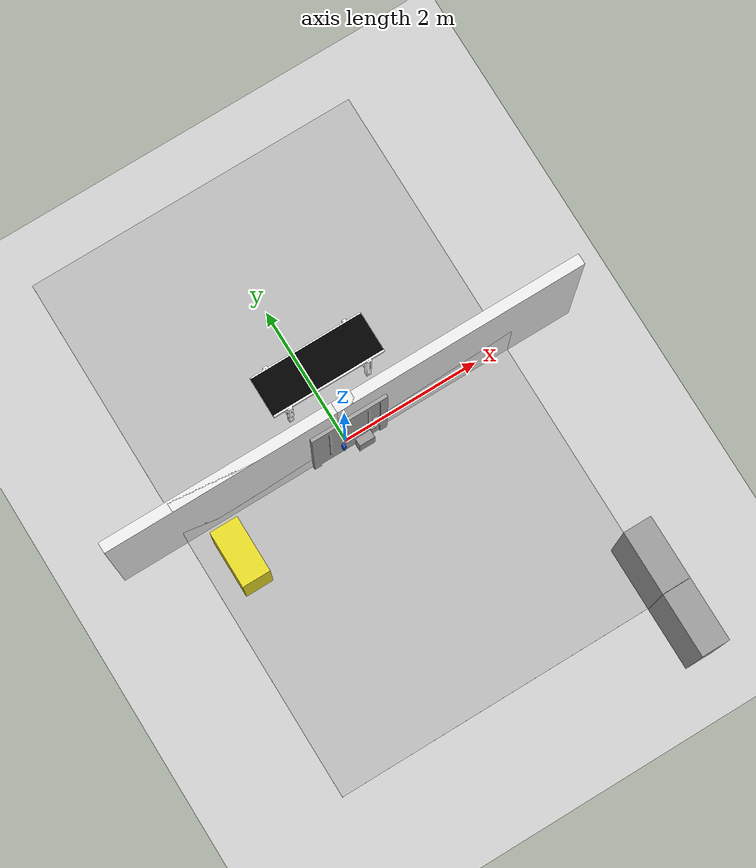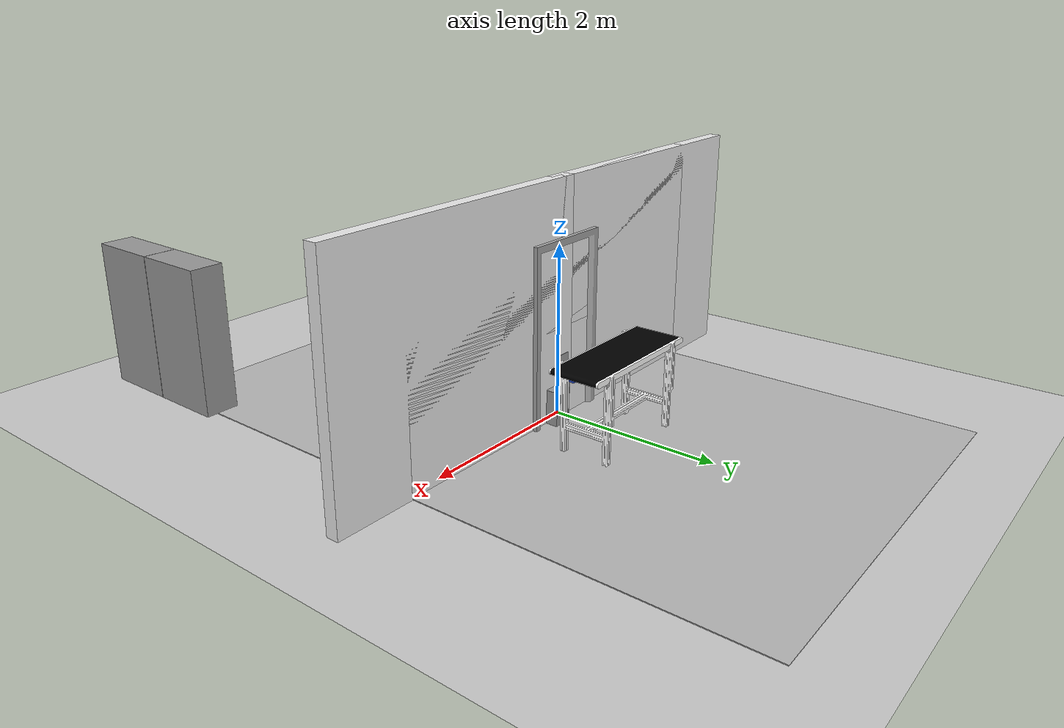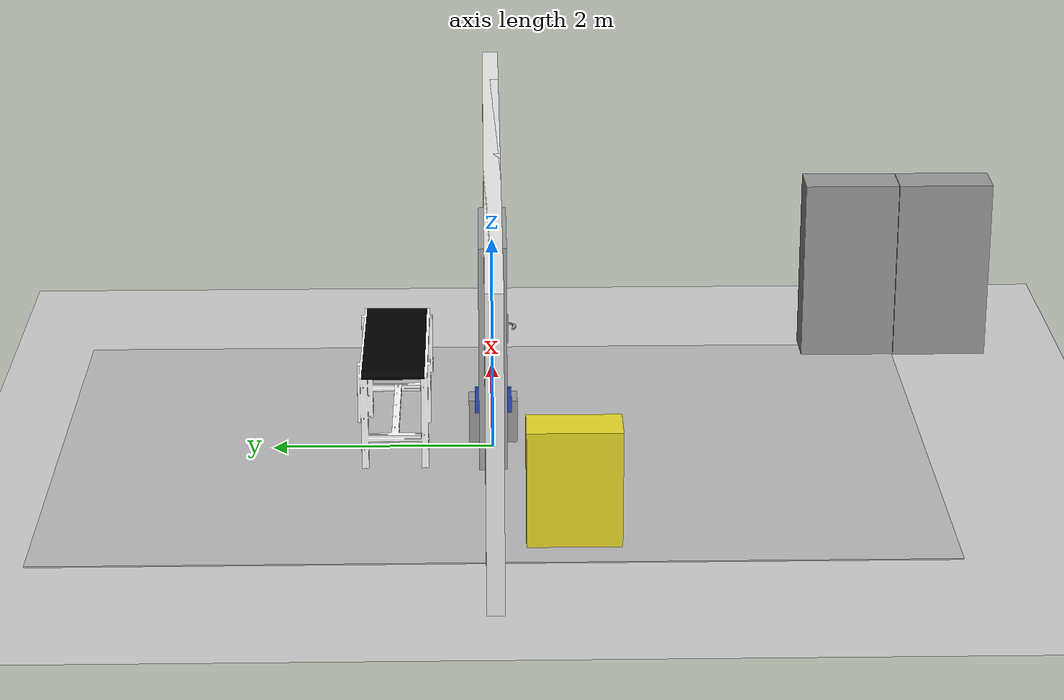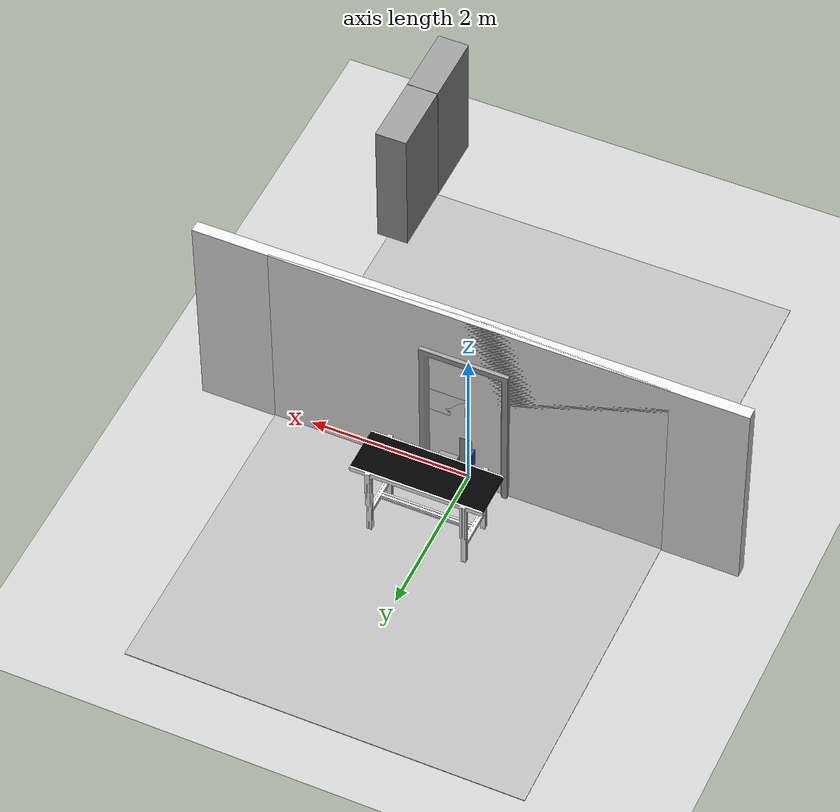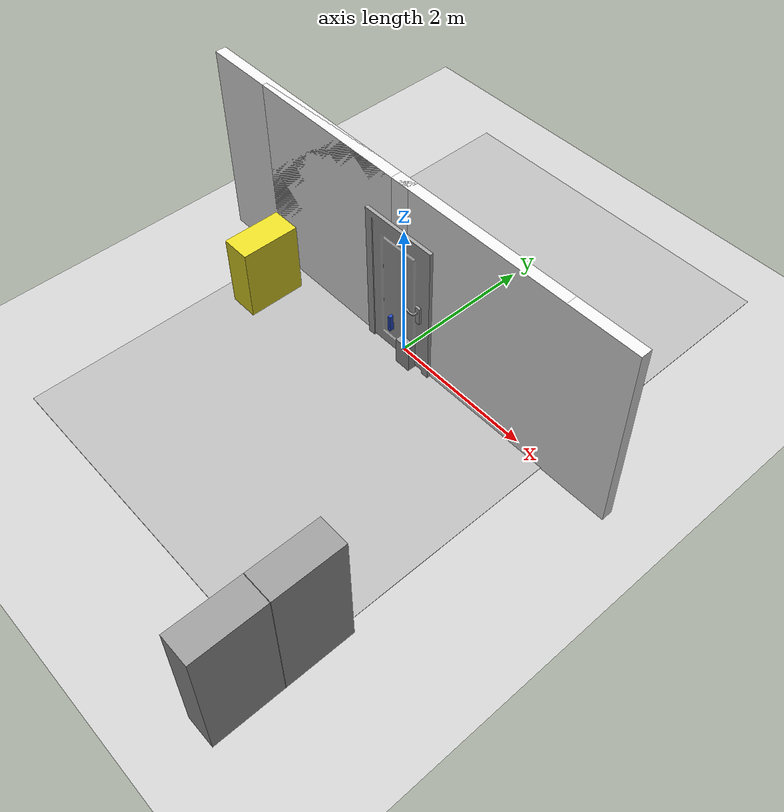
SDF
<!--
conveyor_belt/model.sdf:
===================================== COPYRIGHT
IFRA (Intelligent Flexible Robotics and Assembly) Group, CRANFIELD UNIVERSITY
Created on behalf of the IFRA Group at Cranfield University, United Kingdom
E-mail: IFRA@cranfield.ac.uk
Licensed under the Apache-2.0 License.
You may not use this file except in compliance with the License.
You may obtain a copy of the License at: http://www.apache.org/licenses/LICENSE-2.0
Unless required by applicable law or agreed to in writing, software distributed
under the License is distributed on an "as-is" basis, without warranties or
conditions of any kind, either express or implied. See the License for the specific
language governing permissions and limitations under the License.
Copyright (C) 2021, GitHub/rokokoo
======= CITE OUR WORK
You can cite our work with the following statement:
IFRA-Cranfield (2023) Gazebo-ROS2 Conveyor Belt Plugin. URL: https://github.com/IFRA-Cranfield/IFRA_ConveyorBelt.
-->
<sdf version="1.6">
 <world name="default">
  <light name="sun" type="directional">
   <pose>0 0 10 0 -0 0</pose>
   <diffuse>0.8 0.8 0.8 1</diffuse>
   <specular>0.1 0.1 0.1 1</specular>
   <attenuation>
    <range>1000</range>
    <constant>0.9</constant>
    <linear>0.01</linear>
    <quadratic>0.001</quadratic>
   </attenuation>
   <direction>-0.5 0.5 -1</direction>
  </light>
  <model name="ground_plane">
   <static>1</static>
   <link name="link">
    <collision name="collision">
     <geometry><plane><normal>0 0 1</normal><size>100 100</size></plane></geometry>
     <surface><friction><ode><mu>100</mu><mu2>50</mu2></ode></friction></surface>
    </collision>
    <visual name="visual">
     <cast_shadows>0</cast_shadows>
     <geometry><plane><normal>0 0 1</normal><size>100 100</size></plane></geometry>
     <material>
      <script><uri>file://media/materials/scripts/gazebo.material</uri><name>Gazebo/Grey</name></script>
     </material>
    </visual>
   </link>
  </model>
  <gravity>0 0 -9.8</gravity>
  <magnetic_field>6e-06 2.3e-05 -4.2e-05</magnetic_field>
  <atmosphere type="adiabatic"/>
  <physics name="default_physics" default="0" type="ode">
   <max_step_size>0.001</max_step_size>
   <real_time_factor>1</real_time_factor>
   <real_time_update_rate>1000</real_time_update_rate>
  </physics>
  <scene><ambient>0.4 0.4 0.4 1</ambient><background>0.7 0.7 0.7 1</background><shadows>1</shadows></scene>
  <spherical_coordinates>
   <surface_model>EARTH_WGS84</surface_model>
   <latitude_deg>0</latitude_deg>
   <longitude_deg>0</longitude_deg>
   <elevation>0</elevation>
   <heading_deg>0</heading_deg>
  </spherical_coordinates>
  <include>
   <name>conveyor_belt</name>
   <pose>0.125 0.88 0 0 0 1.5708</pose>
   <uri>model://conveyor_belt</uri>
  </include>
  <model name="office_small_1">
   <model name="Floor">
    <link name="main">
     <collision name="main_Collision"><geometry><box><size>4.9 7.865 0.01</size></box></geometry></collision>
     <visual name="main_Visual">
      <geometry><box><size>4.9 7.865 0.01</size></box></geometry>
      <material>
       <script>
        <uri>model://office_small/materials/scripts</uri>
        <uri>model://office_small/materials/textures</uri>
        <name>floor</name>
       </script>
      </material>
     </visual>
    </link>
    <static>1</static>
   </model>
   <model name="office_small">
    <link name="Wall_2">
     <visual name="Wall_2_Visual_0">
      <pose>0 0 1.25 0 -0 0</pose>
      <geometry><box><size>4.9 0.15 3.02</size></box></geometry>
      <material>
       <script>
        <uri>model://office_small/materials/scripts</uri>
        <uri>model://office_small/materials/textures</uri>
        <name>wall_white</name>
       </script>
      </material>
     </visual>
     <collision name="Wall_2_Collision_0">
      <geometry><box><size>4.9 0.15 3.02</size></box></geometry>
      <pose>0 0 1.25 0 -0 0</pose>
     </collision>
    </link>
    <link name="Wall_3">
     <visual name="Wall_3_Visual_0">
      <pose>0 0 1.25 0 -0 0</pose>
      <geometry><box><size>4.9 0.15 3.02</size></box></geometry>
      <material>
       <script>
        <uri>model://office_small/materials/scripts</uri>
        <uri>model://office_small/materials/textures</uri>
        <name>wall_white</name>
       </script>
      </material>
     </visual>
     <collision name="Wall_3_Collision_0">
      <geometry><box><size>4.9 0.15 3.02</size></box></geometry>
      <pose>0 0 1.25 0 -0 0</pose>
     </collision>
    </link>
    <link name="Wall_5">
     <visual name="Wall_5_Visual_0">
      <pose>0 0 1.25 0 -0 0</pose>
      <geometry><box><size>0.27 0.15 3.02</size></box></geometry>
      <material>
       <script>
        <uri>model://office_small/materials/scripts</uri>
        <uri>model://office_small/materials/textures</uri>
        <name>wall_white</name>
       </script>
      </material>
     </visual>
     <collision name="Wall_5_Collision_0">
      <geometry><box><size>0.12 0.15 3.02</size></box></geometry>
      <pose>0 0 1.25 0 -0 0</pose>
     </collision>
    </link>
    <link name="Wall_6">
     <visual name="Wall_6_Visual_0">
      <pose>0 0 1.25 0 -0 0</pose>
      <geometry><box><size>6.8 0.15 3.02</size></box></geometry>
      <material>
       <script>
        <uri>model://office_small/materials/scripts</uri>
        <uri>model://office_small/materials/textures</uri>
        <name>wall_white</name>
       </script>
      </material>
     </visual>
     <collision name="Wall_6_Collision_0">
      <geometry><box><size>6.8 0.15 3.02</size></box></geometry>
      <pose>0 0 1.25 0 -0 0</pose>
     </collision>
    </link>
    <link name="Wall_7">
     <visual name="Wall_7_Visual_0">
      <pose>0 0 1.25 0 -0 0</pose>
      <geometry><box><size>1.02 0.15 0.35</size></box></geometry>
      <material>
       <script>
        <uri>model://office_small/materials/scripts</uri>
        <uri>model://office_small/materials/textures</uri>
        <name>wall_white</name>
       </script>
      </material>
     </visual>
     <collision name="Wall_7_Collision_0">
      <geometry><box><size>1.02 0.15 0.35</size></box></geometry>
      <pose>0 0 1.25 0 -0 0</pose>
     </collision>
    </link>
    <static>1</static>
   </model>
   <model name="door_3d">
    <link name="link_1">
     <visual name="visual">
      <geometry><mesh><uri>model://door_3d/meshes/door_v2_door.dae</uri><scale>1 1 1</scale></mesh></geometry>
      <material>
       <script>
        <uri>model://door_3d/materials/scripts</uri>
        <uri>model://door_3d/materials/textures</uri>
        <name>door_3d</name>
       </script>
      </material>
     </visual>
     <collision name="collision">
      <geometry><mesh><uri>model://door_3d/meshes/door_v2_door.dae</uri><scale>1 1 1</scale></mesh></geometry>
     </collision>
    </link>
    <link name="link_2">
     <visual name="visual">
      <geometry><mesh><uri>model://door_3d/meshes/door_v2_handle.dae</uri><scale>1 1 1</scale></mesh></geometry>
      <material>
       <script>
        <uri>model://door_3d/materials/scripts</uri>
        <uri>model://door_3d/materials/textures</uri>
        <name>door_handle</name>
       </script>
      </material>
     </visual>
     <collision name="collision">
      <geometry><mesh><uri>model://door_3d/meshes/door_v2_handle.dae</uri><scale>1 1 1</scale></mesh></geometry>
     </collision>
    </link>
    <static>1</static>
   </model>
   <static>0</static>
  </model>
  <model name="table_1">
   <link name="Wall">
    <inertial>
     <mass>5</mass>
     <inertia><ixx>0.1022</ixx><iyy>0.2197</iyy><izz>0.1905</izz><ixy>0</ixy><ixz>0</ixz><iyz>0</iyz></inertia>
    </inertial>
    <collision name="Wall_Collision"><geometry><box><size>0.9 0.4 1.74125</size></box></geometry></collision>
    <visual name="Wall_Visual">
     <geometry><box><size>0.9 0.4 1.74125</size></box></geometry>
     <material>
      <script><uri>file://media/materials/scripts/gazebo.material</uri><name>Gazebo/Grey</name></script>
      <ambient>1 1 1 1</ambient>
     </material>
    </visual>
   </link>
   <static>1</static>
   <pose>2.385 -4.3965 0.870625 0 -0 1.5708</pose>
  </model>
  <model name="table_2">
   <link name="Wall_2">
    <inertial>
     <mass>5</mass>
     <inertia><ixx>0.1022</ixx><iyy>0.2197</iyy><izz>0.1905</izz><ixy>0</ixy><ixz>0</ixz><iyz>0</iyz></inertia>
    </inertial>
    <collision name="Wall_Collision_2"><geometry><box><size>0.9 0.4 1.74125</size></box></geometry></collision>
    <visual name="Wall_Visual_2">
     <geometry><box><size>0.9 0.4 1.74125</size></box></geometry>
     <material>
      <script><uri>file://media/materials/scripts/gazebo.material</uri><name>Gazebo/Grey</name></script>
      <ambient>1 1 1 1</ambient>
     </material>
    </visual>
   </link>
   <static>1</static>
   <pose>2.385 -3.4915 0.870625 0 -0 1.5708</pose>
  </model>
  <model name="table_4">
   <link name="Wall_4">
    <inertial>
     <mass>5</mass>
     <inertia><ixx>0.1022</ixx><iyy>0.2197</iyy><izz>0.1905</izz><ixy>0</ixy><ixz>0</ixz><iyz>0</iyz></inertia>
    </inertial>
    <collision name="Wall_Collision_4"><geometry><box><size>0.813 0.405 1.05</size></box></geometry></collision>
    <visual name="Wall_Visual_4">
     <geometry><box><size>0.813 0.405 1.05</size></box></geometry>
     <material>
      <script><uri>file://media/materials/scripts/gazebo.material</uri><name>Gazebo/Yellow</name></script>
      <ambient>1 1 1 1</ambient>
     </material>
    </visual>
   </link>
   <static>1</static>
   <pose>-1.9625 -0.6745 0.525 0 -0 -1.5708</pose>
  </model>
  <model name="table_5">
   <link name="Wall_5">
    <inertial>
     <mass>5</mass>
     <inertia><ixx>0.1022</ixx><iyy>0.2197</iyy><izz>0.1905</izz><ixy>0</ixy><ixz>0</ixz><iyz>0</iyz></inertia>
    </inertial>
    <collision name="Wall_Collision_5"><geometry><box><size>0.16 0.16 0.75</size></box></geometry></collision>
    <visual name="Wall_Visual_5">
     <geometry><box><size>0.16 0.16 0.75</size></box></geometry>
     <material>
      <script><uri>file://media/materials/scripts/gazebo.material</uri><name>Gazebo/Grey</name></script>
      <ambient>1 1 1 1</ambient>
     </material>
    </visual>
   </link>
   <static>1</static>
   <pose>0 0 0.375 0 -0 1.5708</pose>
  </model>
  <model name="table_6">
   <link name="Wall_6">
    <inertial>
     <mass>5</mass>
     <inertia><ixx>0.1022</ixx><iyy>0.2197</iyy><izz>0.1905</izz><ixy>0</ixy><ixz>0</ixz><iyz>0</iyz></inertia>
    </inertial>
    <collision name="Wall_Collision_6"><geometry><box><size>0.44 0.23 0.41</size></box></geometry></collision>
    <visual name="Wall_Visual_6">
     <geometry><box><size>0.44 0.23 0.41</size></box></geometry>
     <material>
      <script><uri>file://media/materials/scripts/gazebo.material</uri><name>Gazebo/Grey</name></script>
      <ambient>1 1 1 1</ambient>
     </material>
    </visual>
   </link>
   <static>1</static>
   <pose>0.20 0 0.205 0 -0 1.5708</pose>
  </model>
  <model name="table_8">
   <link name="Wall_8">
    <inertial>
     <mass>5</mass>
     <inertia><ixx>0.1022</ixx><iyy>0.2197</iyy><izz>0.1905</izz><ixy>0</ixy><ixz>0</ixz><iyz>0</iyz></inertia>
    </inertial>
    <collision name="Wall_Collision_8"><geometry><box><size>0.04 0.33 0.24</size></box></geometry></collision>
    <visual name="Wall_Visual_8">
     <geometry><box><size>0.04 0.33 0.24</size></box></geometry>
     <material>
      <script><uri>file://media/materials/scripts/gazebo.material</uri><name>Gazebo/Blue</name></script>
      <ambient>1 1 1 1</ambient>
     </material>
    </visual>
   </link>
   <static>1</static>
   <pose>-0.10 0 0.5 0 -0 3.1416</pose>
  </model>
 </world>
</sdf>

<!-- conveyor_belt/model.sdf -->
<sdf version="1.4">

    <model name="conveyor_belt">
        <model name="conveyorbelt_fixed">

            <static>true</static>

            <link name="belt_visual">
                <visual name="visual">
                    <geometry>
                        <mesh>
                            <scale>1 1 1</scale>
                            <uri>model://conveyor_belt/meshes/conveyor_belt.dae</uri>
                        </mesh>
                    </geometry>
                </visual>
                <collision name="collision">
                    <origin xyz="0.0 0.0 0" rpy="0.0 0.0 0.0"/>
                    <geometry>
                        <mesh>
                            <scale>1 1 1</scale>
                            <uri>model://conveyor_belt/meshes/conveyor_belt.dae</uri>
                        </mesh>
                    </geometry>
                </collision>
            </link>
        </model>

        <model name="conveyorbelt_moving">
            <allow_auto_disable>0</allow_auto_disable>
            <static>false</static>

            <pose>0 0 0.741 0 0 0.0</pose>

            <link name="belt_moving">
                <inertial>
                    <mass>100.0</mass>
                    <inertia>
                        <ixx>0.0</ixx>
                        <ixy>0.0</ixy>
                        <ixz>0.0</ixz>
                        <iyy>0.0</iyy>
                        <iyz>0.0</iyz>
                        <izz>0.0</izz>
                    </inertia>
                </inertial>
                <collision name="belt_collision">
                    <geometry>
                        <box>
                            <size>0.425 1.2 0.00001</size>
                        </box>
                    </geometry>
                    <surface>
                        <friction>
                            <ode>
                                <mu>100.0</mu>
                                <mu2>100.0</mu2>
                            </ode>
                            <torsional>
                                <coefficient>1000.0</coefficient>
                                <patch_radius>0.1</patch_radius>
                            </torsional>
                        </friction>
                    </surface>
                </collision>
            </link>

        </model>

        <joint name="belt_joint" type="prismatic">
            <parent>conveyorbelt_fixed::belt_visual</parent>
            <child>conveyorbelt_moving::belt_moving</child>
            <axis>
                <xyz>0 1 0</xyz>
                <limit>
                    <lower>0.0</lower>
                    <upper>0.01</upper>
                </limit>
            </axis>
        </joint>

        <plugin name="ros2_conveyorbelt_plugin" filename="libros2_conveyorbelt_plugin.so" >
            <ros>
                <namespace>conveyor</namespace>
            </ros>
            <max_velocity>1.0</max_velocity>
            <publish_rate>1000</publish_rate>
        </plugin>

    </model>

</sdf>
